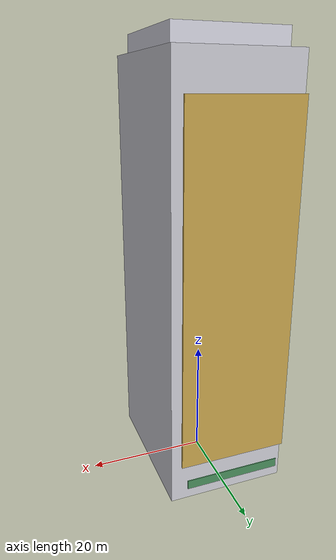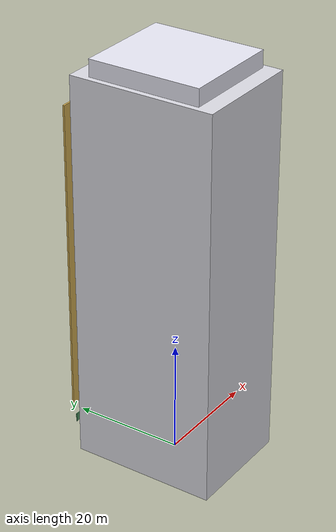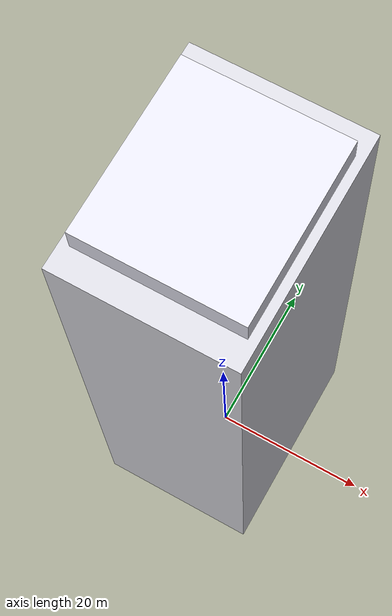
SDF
<?xml version="1.0" ?>
<sdf version="1.8">
  <model name="skytree_parkview_tower">
    <static>true</static>
    <link name="skytree_link">
      <collision name="tower_col"><pose>0 0 35.0 0 0 0</pose><geometry><box><size>20.0 26.0 70.0</size></box></geometry></collision>
      <visual name="tower_vis"><pose>0 0 35.0 0 0 0</pose><geometry><box><size>20.0 26.0 70.0</size></box></geometry><material><ambient>0.78 0.78 0.80 1</ambient><diffuse>0.85 0.85 0.88 1</diffuse></material></visual>
      <visual name="gold_fins"><pose>0 15.1 36.0 0 0 0</pose><geometry><box><size>18.0 0.3 56.0</size></box></geometry><material><ambient>0.65 0.52 0.25 1</ambient><diffuse>0.82 0.68 0.32 1</diffuse><specular>0.8 0.7 0.4 1</specular></material></visual>
      <visual name="tea_fascia"><pose>0 15.2 4.5 0 0 0</pose><geometry><box><size>16.0 0.15 1.5</size></box></geometry><material><ambient>0.22 0.42 0.28 1</ambient><diffuse>0.30 0.58 0.38 1</diffuse><emissive>0.10 0.25 0.15 1</emissive></material></visual>
      <visual name="crown_illuminated"><pose>0 0 71.5 0 0 0</pose><geometry><box><size>18.0 20.0 3.0</size></box></geometry><material><ambient>0.75 0.75 0.80 1</ambient><diffuse>0.90 0.90 0.95 1</diffuse><emissive>0.3 0.3 0.35 1</emissive></material></visual>
    </link>
  </model>
</sdf>
